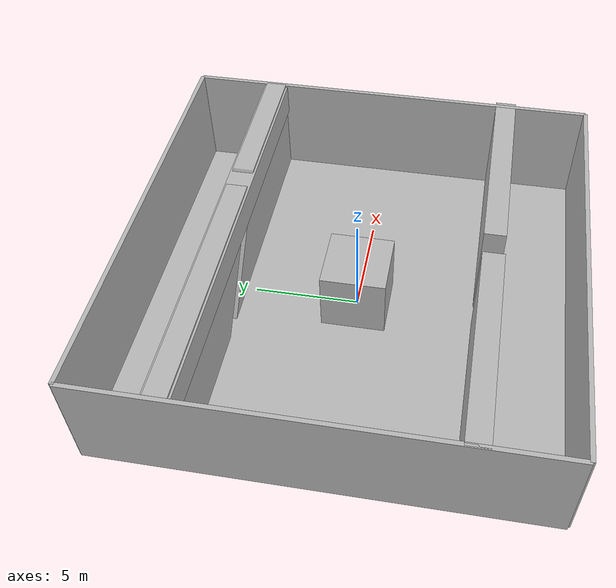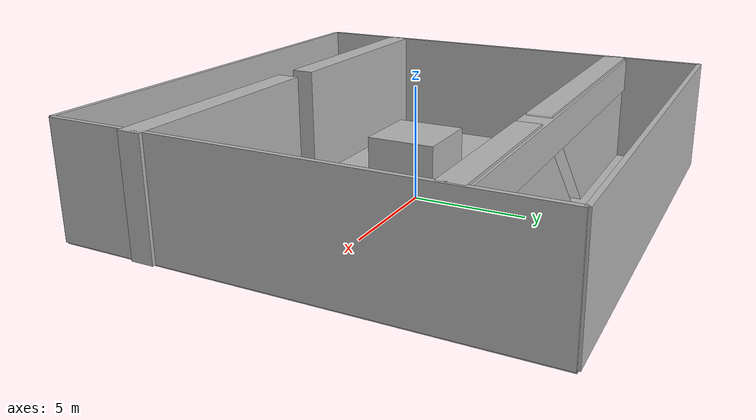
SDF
<sdf version="1.4">
 <world name="default">
  <model name="ground_plane">
   <static>true</static>
   <link name="ground_link">
    <collision name="ground_collision">
     <geometry><box><size>20 20 0.1</size></box></geometry>
     <pose>0 0 -0.05 0 0 0</pose>
    </collision>
    <visual name="ground_visual">
     <geometry><box><size>20 20 0.1</size></box></geometry>
     <material>
      <script>
       <uri>model://wall_materials/materials/scripts</uri>
       <uri>model://wall_materials/materials/textures</uri>
       <name>Walls/Map8</name>
      </script>
     </material>
     <pose>0 0 -0.05 0 0 0</pose>
    </visual>
   </link>
  </model>
  <model name="middle_wall_with_opening">
   <static>true</static>
   <link name="wall_link">
    <collision name="left_wall_part">
     <geometry><box><size>9.6 1 5</size></box></geometry>
     <pose>-5.25 -6.0 2.5 0 0 0</pose>
    </collision>
    <visual name="left_wall_visual">
     <geometry><box><size>9.6 1 5</size></box></geometry>
     <material>
      <script>
       <uri>model://wall_materials/materials/scripts</uri>
       <uri>model://wall_materials/materials/textures</uri>
       <name>Walls/Map1</name>
      </script>
     </material>
     <pose>-5.25 -6.0 2.5 0 0 0</pose>
    </visual>
    <collision name="right_wall_part">
     <geometry><box><size>9.6 1 5</size></box></geometry>
     <pose>5.45 -6.0 2.5 0 0 0</pose>
    </collision>
    <visual name="right_wall_visual">
     <geometry><box><size>9.6 1 5</size></box></geometry>
     <material>
      <script>
       <uri>model://wall_materials/materials/scripts</uri>
       <uri>model://wall_materials/materials/textures</uri>
       <name>Walls/Poster1</name>
      </script>
     </material>
     <pose>5.45 -6.0 2.5 0 0 0</pose>
    </visual>
   </link>
  </model>
  <model name="top_wall">
   <static>true</static>
   <link name="wall_link">
    <collision name="wall_collision">
     <geometry><box><size>20 0.2 5</size></box></geometry>
     <pose>0 10 2.5 0 0 0</pose>
    </collision>
    <visual name="wall_visual">
     <geometry><box><size>20 0.2 5</size></box></geometry>
     <material>
      <script>
       <uri>model://wall_materials/materials/scripts</uri>
       <uri>model://wall_materials/materials/textures</uri>
       <name>Walls/Poster1</name>
      </script>
     </material>
     <pose>0 10 2.5 0 0 0</pose>
    </visual>
   </link>
  </model>
  <model name="bottom_wall">
   <static>true</static>
   <link name="wall_link">
    <collision name="wall_collision">
     <geometry><box><size>20 0.2 5</size></box></geometry>
     <pose>0 -10 2.5 0 0 0</pose>
    </collision>
    <visual name="wall_visual">
     <geometry><box><size>20 0.2 5</size></box></geometry>
     <material>
      <script>
       <uri>model://wall_materials/materials/scripts</uri>
       <uri>model://wall_materials/materials/textures</uri>
       <name>Walls/Map3</name>
      </script>
     </material>
     <pose>0 -10 2.5 0 0 0</pose>
    </visual>
   </link>
  </model>
  <model name="left_wall">
   <static>true</static>
   <link name="wall_link">
    <collision name="wall_collision">
     <geometry><box><size>0.2 20 5</size></box></geometry>
     <pose>-10 0 2.5 0 0 0</pose>
    </collision>
    <visual name="wall_visual">
     <geometry><box><size>0.2 20 5</size></box></geometry>
     <material>
      <script>
       <uri>model://wall_materials/materials/scripts</uri>
       <uri>model://wall_materials/materials/textures</uri>
       <name>Walls/Map4</name>
      </script>
     </material>
     <pose>-10 0 2.5 0 0 0</pose>
    </visual>
   </link>
  </model>
  <model name="right_wall">
   <static>true</static>
   <link name="wall_link">
    <collision name="wall_collision">
     <geometry><box><size>0.2 20 5</size></box></geometry>
     <pose>10 0 2.5 0 0 0</pose>
    </collision>
    <visual name="wall_visual">
     <geometry><box><size>0.2 20 5</size></box></geometry>
     <material>
      <script>
       <uri>model://wall_materials/materials/scripts</uri>
       <uri>model://wall_materials/materials/textures</uri>
       <name>Walls/Map5</name>
      </script>
     </material>
     <pose>10 0 2.5 0 0 0</pose>
    </visual>
   </link>
  </model>
  <model name="wall_at_pose_0_5.5_5">
   <static>true</static>
   <link name="wall_link">
    <collision name="wall_collision">
     <geometry><box><size>20 1.2 1.5</size></box></geometry>
     <pose>0 6 4.15 0 0 0</pose>
    </collision>
    <visual name="wall_visual">
     <geometry><box><size>20 1.2 1.5</size></box></geometry>
     <material>
      <script>
       <uri>model://wall_materials/materials/scripts</uri>
       <uri>model://wall_materials/materials/textures</uri>
       <name>Walls/New</name>
      </script>
     </material>
     <pose>0 6 4.15 0 0 0</pose>
    </visual>
   </link>
  </model>
  <model name="center_cube">
   <static>true</static>
   <link name="cube_link">
    <collision name="cube_collision">
     <geometry><box><size>3.0 3.0 3.0</size></box></geometry>
     <pose>0 0 1.5 0 0 0</pose>
    </collision>
    <visual name="cube_visual">
     <geometry><box><size>3.0 3.0 3.0</size></box></geometry>
     <material>
      <script>
       <uri>model://wall_materials/materials/scripts</uri>
       <uri>model://wall_materials/materials/textures</uri>
       <name>Walls/Map7</name>
      </script>
     </material>
     <pose>0 0 1.5 0 0 0</pose>
    </visual>
   </link>
  </model>
  <include><uri>model://triangle_wall</uri><pose>0 5.5 0 0 0 0</pose></include>
 </world>
</sdf>

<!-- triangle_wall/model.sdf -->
<sdf version="1.6">
  <model name="triangle_wall">
    <static>true</static>
    <link name="wall_link">
      <!-- Left Triangle -->
      <collision name="left_triangle_collision">
        <geometry>
          <mesh>
            <uri>model://triangle_wall/meshes/left_triangle.stl</uri>
          </mesh>
        </geometry>
      </collision>
      <visual name="left_triangle_visual">
        <geometry>
          <mesh>
            <uri>model://triangle_wall/meshes/left_triangle.obj</uri>
          </mesh>
        </geometry>
        <material>
          <script>
            <uri>model://wall_materials/materials/scripts</uri>
            <uri>model://wall_materials/materials/textures</uri>
            <name>Walls/New</name>
          </script>
        </material>
      </visual>

      <!-- Right Triangle -->
      <collision name="right_triangle_collision">
        <geometry>
          <mesh>
            <uri>model://triangle_wall/meshes/right_triangle.stl</uri>
          </mesh>
        </geometry>
      </collision>
      <visual name="right_triangle_visual">
        <geometry>
          <mesh>
            <uri>model://triangle_wall/meshes/right_triangle.obj</uri>
          </mesh>
        </geometry>
        <material>
          <script>
            <uri>model://wall_materials/materials/scripts</uri>
            <uri>model://wall_materials/materials/textures</uri>
            <name>Walls/Map3</name>
          </script>
        </material>
      </visual>
    </link>
  </model>
</sdf>
